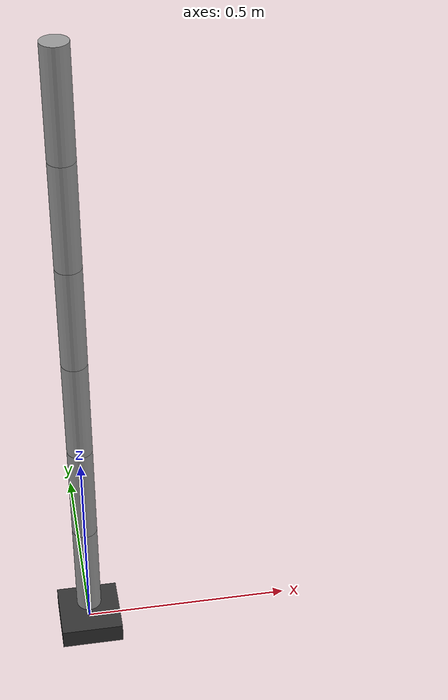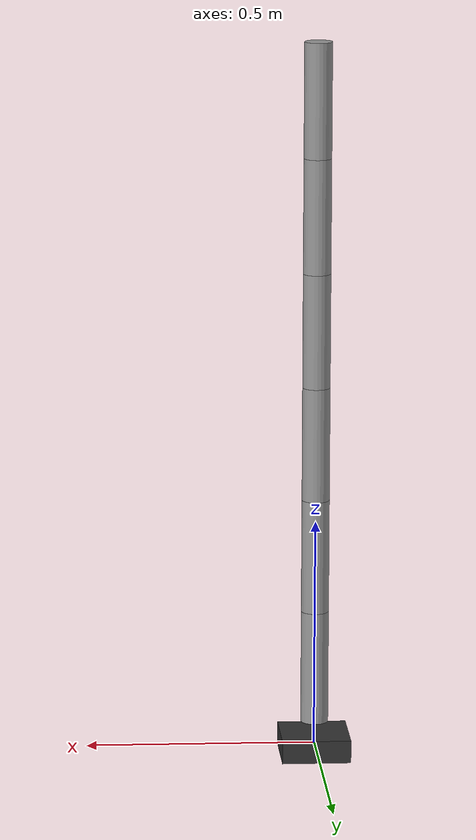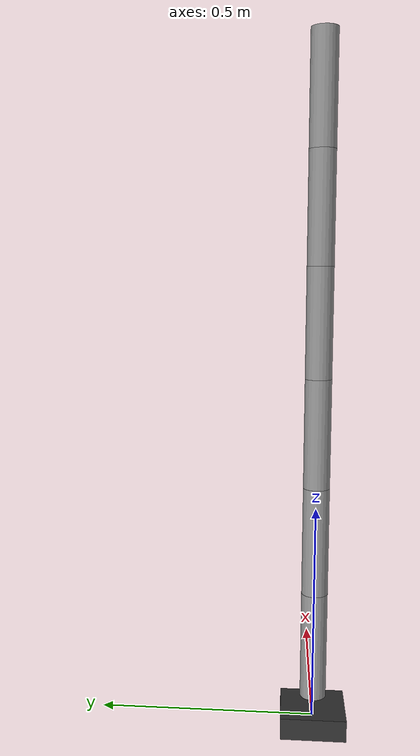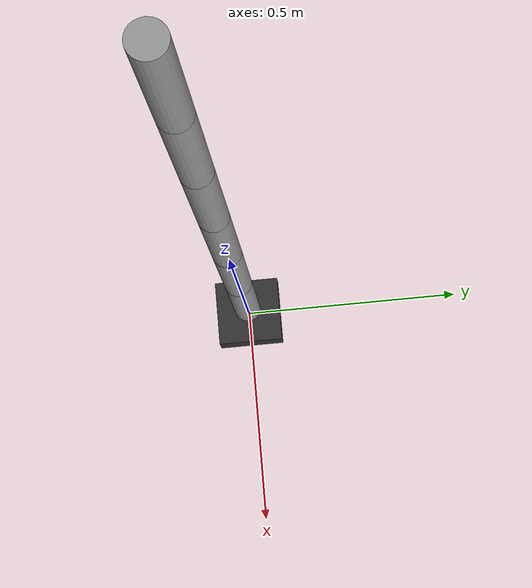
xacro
<?xml version="1.0"?>
<robot name="six_dof_arm" xmlns:xacro="http://www.ros.org/wiki/xacro">

  <!-- Dimensions -->
  <xacro:property name="link_radius" value="0.03"/>
  <xacro:property name="link_length" value="0.25"/>

  <!-- Base Link -->
  <link name="base_link">
    <visual>
      <geometry>
        <box size="0.15 0.15 0.05"/>
      </geometry>
      <material name="dark_gray">
        <color rgba="0.2 0.2 0.2 1"/>
      </material>
    </visual>
  </link>

  <!-- Revolute joint + link -->
  <xacro:macro name="arm_joint" params="parent child xyz rpy axis">
    <link name="${child}">
      <visual>
        <origin xyz="0 0 ${link_length/2}" rpy="0 0 0"/>
        <geometry>
          <cylinder radius="${link_radius}" length="${link_length}"/>
        </geometry>
        <material name="light_gray">
          <color rgba="0.6 0.6 0.6 1"/>
        </material>
      </visual>
    </link>

    <joint name="${parent}_to_${child}" type="revolute">
      <parent link="${parent}"/>
      <child link="${child}"/>
      <origin xyz="${xyz}" rpy="${rpy}"/>
      <axis xyz="${axis}"/>
      <limit lower="-3.14" upper="3.14" effort="10" velocity="1"/>
    </joint>
  </xacro:macro>

  <!-- 6-DOF chain -->
  <xacro:arm_joint parent="base_link" child="link_1" xyz="0 0 0.05" rpy="0 0 0" axis="0 0 1"/>
  <xacro:arm_joint parent="link_1" child="link_2" xyz="0 0 ${link_length}" rpy="0 0 0" axis="0 1 0"/>
  <xacro:arm_joint parent="link_2" child="link_3" xyz="0 0 ${link_length}" rpy="0 0 0" axis="0 1 0"/>
  <xacro:arm_joint parent="link_3" child="link_4" xyz="0 0 ${link_length}" rpy="0 0 0" axis="0 0 1"/>
  <xacro:arm_joint parent="link_4" child="link_5" xyz="0 0 ${link_length}" rpy="0 0 0" axis="0 1 0"/>
  <xacro:arm_joint parent="link_5" child="link_6" xyz="0 0 ${link_length}" rpy="0 0 0" axis="0 0 1"/>

</robot>
